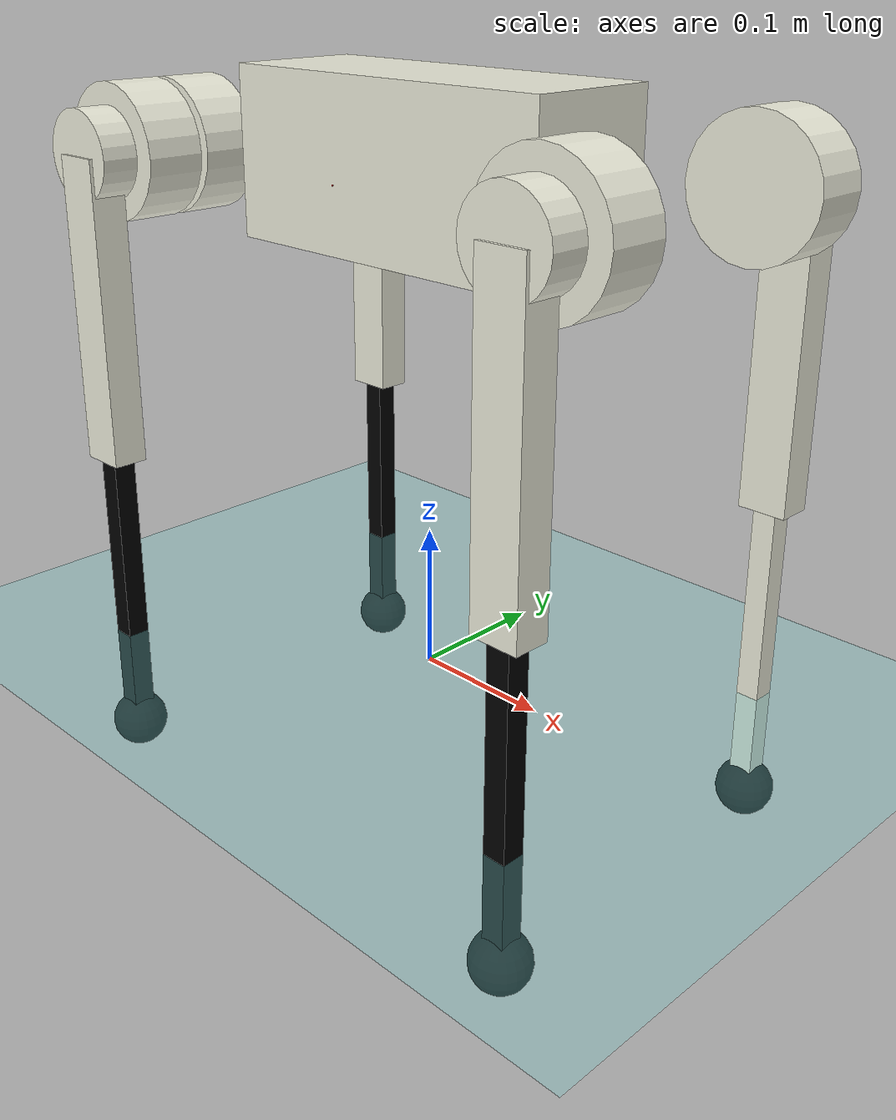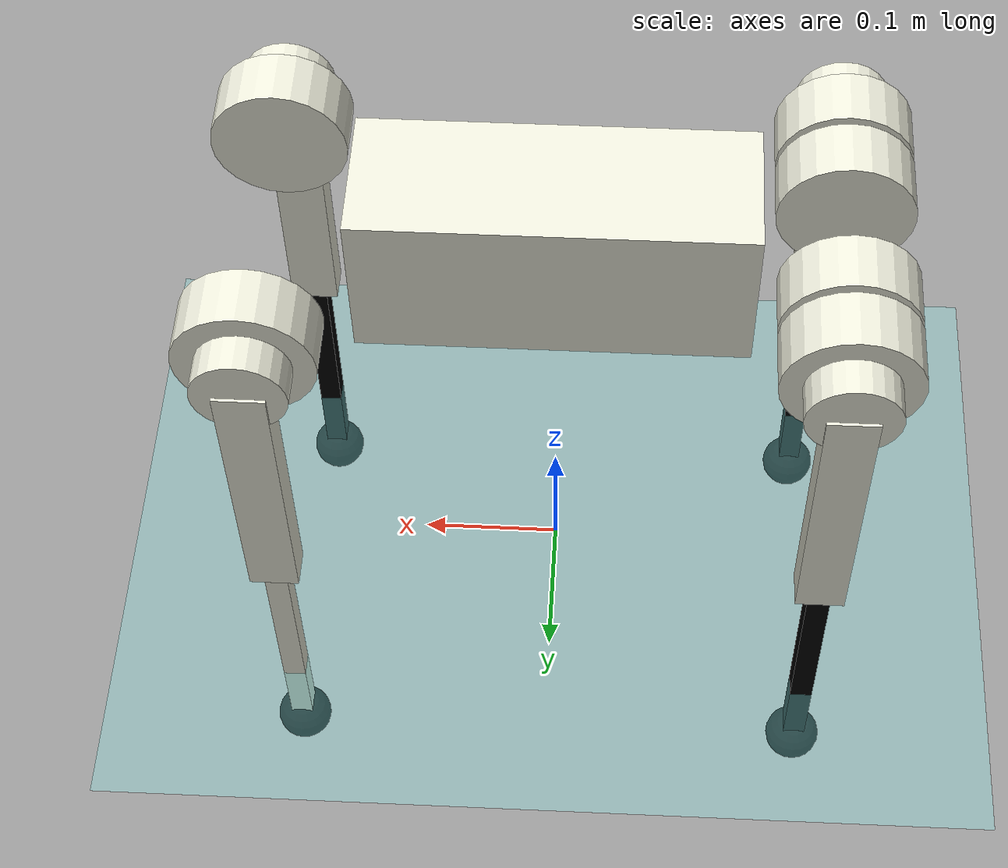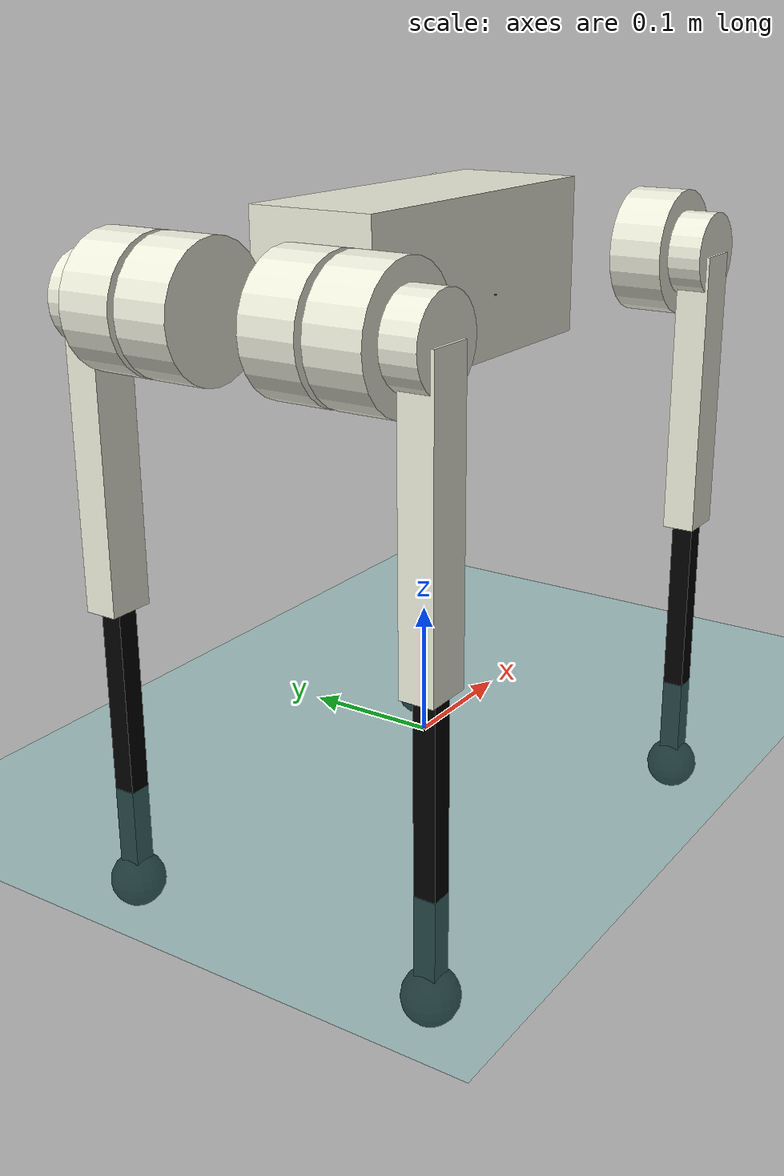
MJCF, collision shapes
<mujoco model="go1_description">
    <compiler angle="radian" meshdir="../meshes/" />
    <size njmax="500" nconmax="100" />
    <option gravity='0 0 -9.806' iterations='50' solver='Newton' timestep='0.002'/>

    <default>
        <geom contype="1" conaffinity="1" friction="0.6 0.3 0.3" rgba="0.5 0.6 0.7 1" margin="0.001" group="0"/>

        <light castshadow="false" diffuse="1 1 1"/>
        <motor ctrlrange="-33.5 33.5" ctrllimited="true"/>
        <camera fovy="60"/>
        <joint damping="0.01" armature="0.01" frictionloss="0.2" />

    </default>

    <custom>
        <numeric name="sensor_size" data="0.05" />
    </custom>

    <asset>
        <mesh name="trunk" file="trunk.stl" />
        <mesh name="hip" file="hip.stl" />
        <mesh name="thigh_mirror" file="thigh_mirror.stl" />
        <mesh name="calf" file="calf.stl" />
        <mesh name="thigh" file="thigh.stl" />
        <mesh name="sensor_body" file="sensor_body.stl" />
    </asset>

    <asset>
        <texture type="skybox" builtin="gradient" rgb1="1.0 1.0 1.0" rgb2="1.0 1.0 1.0" width="512" height="512"/>
        <texture name="plane" type="2d" builtin="flat" rgb1="1 1 1" rgb2="1 1 1" width="512" height="512" mark="cross" markrgb="0 0 0"/>
        <material name="plane" reflectance="0.0" texture="plane" texrepeat="3 3" texuniform="true"/>
    </asset>

    <asset>
        <hfield name="hf1" size="10 10 0.3 0.1" file="C:\\Users\\Omri\\Desktop\\MSc\\Thesis\\Code\\Height_Maps\\heightmap1682612500.9804645.png"/>
        <texture name="height_map_texture" type="2d" file="C:\\Users\\Omri\\Desktop\\MSc\\Thesis\\Code\\Height_Maps\\heightmap1682612500.9804645.png" />
    </asset>

    <visual>
        <rgba com="0.502 1.0 0 0.5" contactforce="0.98 0.4 0.4 0.7" contactpoint="1.0 1.0 0.6 0.4"/>
        <scale com="0.2" forcewidth="0.035" contactwidth="0.10" contactheight="0.04"/>
    </visual>

    <worldbody>
        <light directional="true" diffuse=".8 .8 .8" pos="0 0 10" dir="0 0 -10"/>
        <camera name="track" mode="trackcom" pos="0 -1.3 1.6" xyaxes="1 0 0 0 0.707 0.707"/>
        <geom name='floor' type='plane' conaffinity='1' condim='3' contype='1' rgba="0.5 0.9 0.9 0.1" material='plane' pos='0 0 0' size='0 0 1'/>

        <body name="trunk" pos="0 0 0.35">
            <inertial pos="0.0116053 0.00442221 0.000106692" quat="0.0111438 0.707126 -0.00935374 0.706938" mass="4.801" diaginertia="0.0447997 0.0366257 0.0162187" />
            <joint type="free" />
            <geom type="mesh" contype="0" conaffinity="0" group="1" rgba="0.913725 0.913725 0.847059 1" mesh="trunk" />
            <geom size="0.13 0.04675 0.057" type="box" rgba="0.913725 0.913725 0.847059 1" />
            <geom size="0.0005 0.0005 0.0005" pos="-0.01592 -0.06659 -0.00617" type="box" contype="0" conaffinity="0" group="1" rgba="0.8 0 0 0" />
            <geom size="0.0005 0.0005 0.0005" pos="-0.01592 -0.06659 -0.00617" type="box" rgba="0.8 0 0 0" />
            <site name="imu" pos="0 0 0"/>

            <body name="FR_hip" pos="0.1881 -0.04675 0">
                <inertial pos="-0.00406411 -0.0193463 4.50733e-06" quat="0.467526 0.531662 -0.466259 0.530431" mass="0.679292" diaginertia="0.00131334 0.00122648 0.000728484" />
                <joint name="FR_hip_joint" pos="0 0 0" axis="1 0 0" limited="true" range="-0.802851 0.802851" />
                <geom quat="0 1 0 0" type="mesh" contype="0" conaffinity="0" group="1" rgba="0.913725 0.913725 0.847059 1" mesh="hip" />
                <geom size="0.046 0.02" pos="0 -0.045 0" quat="0.707107 0.707107 0 0" type="cylinder" rgba="0.913725 0.913725 0.847059 0" />
                <geom size="0.031 0.02" pos="0 -0.07 0" quat="0.707107 0.707107 0 0" type="cylinder" rgba="0.913725 0.913725 0.847059 0" />

                <body name="FR_thigh" pos="0 -0.08 0">
                    <inertial pos="-0.003468 0.018947 -0.032736" quat="0.999266 0.00067676 -0.0382978 0.000639813" mass="0.898919" diaginertia="0.00542178 0.00514246 0.000998869" />
                    <joint name="FR_thigh_joint" pos="0 0 0" axis="0 1 0" limited="true" range="-1.0472 4.18879" />
                    <geom type="mesh" contype="0" conaffinity="0" group="1" rgba="0.913725 0.913725 0.847059 1" mesh="thigh_mirror" />
                    <geom size="0.1065 0.01225 0.017" pos="0 0 -0.1065" quat="0.707107 0 0.707107 0" type="box" rgba="0.913725 0.913725 0.847059 0" />

                    <body name="FR_calf" pos="0 0 -0.213">
                        <inertial pos="0.00455603 0.0009473 -0.147239" quat="0.762045 0.00970173 0.0180098 0.647201" mass="0.218015" diaginertia="0.00399678 0.00398122 3.99428e-05" />
                        <joint name="FR_calf_joint" pos="0 0 0" axis="0 1 0" limited="true" range="-2.69653 -0.916298" />
                        <geom type="mesh" contype="0" conaffinity="0" group="1" rgba="0 0 0 1" mesh="calf" />
                        <geom size="0.1065 0.008 0.008" pos="0 0 -0.1065" quat="0.707107 0 0.707107 0" type="box" rgba="0 0 0 0" />
                        <geom size="0.01" pos="0 0 -0.213" contype="0" conaffinity="0" group="1" rgba="0 0 0 1" />
                        <geom name= "FR_calf" size="0.02" pos="0 0 -0.213" rgba="0 0 0 1" />
                        <site name="foot1_force_sensor" pos="0 0 -0.215" size="0.0005" rgba="1 0 0 1" type="sphere" />
                        <site name="foot1_touch_sensor" pos="0 0 -0.215" size="0.0005" rgba="1 0 0 1" type="sphere" />
                    </body>
                </body>
            </body>

            <body name="FL_hip" pos="0.1881 0.04675 0">
                <inertial pos="-0.00406411 0.0193463 4.50733e-06" quat="0.531662 0.467526 -0.530431 0.466259" mass="0.679292" diaginertia="0.00131334 0.00122648 0.000728484" />
                <joint name="FL_hip_joint" pos="0 0 0" axis="1 0 0" limited="true" range="-0.802851 0.802851" />
                <geom type="mesh" contype="0" conaffinity="0" group="1" rgba="0.913725 0.913725 0.847059 1" mesh="hip" />
                <geom size="0.046 0.02" pos="0 0.045 0" quat="0.707107 0.707107 0 0" type="cylinder" rgba="0.913725 0.913725 0.847059 0" />
                <geom size="0.031 0.02" pos="0 0.07 0" quat="0.707107 0.707107 0 0" type="cylinder" rgba="0.913725 0.913725 0.847059 0" />

                <body name="FL_thigh" pos="0 0.08 0">
                    <inertial pos="-0.003468 -0.018947 -0.032736" quat="0.999266 -0.00067676 -0.0382978 -0.000639813" mass="0.898919" diaginertia="0.00542178 0.00514246 0.000998869" />
                    <joint name="FL_thigh_joint" pos="0 0 0" axis="0 1 0" limited="true" range="-1.0472 4.18879" />
                    <geom type="mesh" contype="0" conaffinity="0" group="1" rgba="0.913725 0.913725 0.847059 1" mesh="thigh" />
                    <geom size="0.1065 0.01225 0.017" pos="0 0 -0.1065" quat="0.707107 0 0.707107 0" type="box" rgba="0.913725 0.913725 0.847059 0" />

                    <body name="FL_calf" pos="0 0 -0.213">
                        <inertial pos="0.00455603 0.0009473 -0.147239" quat="0.762045 0.00970173 0.0180098 0.647201" mass="0.218015" diaginertia="0.00399678 0.00398122 3.99428e-05" />
                        <joint name="FL_calf_joint" pos="0 0 0" axis="0 1 0" limited="true" range="-2.69653 -0.916298" />
                        <geom type="mesh" contype="0" conaffinity="0" group="1" rgba="0 0 0 1" mesh="calf" />
                        <geom size="0.1065 0.008 0.008" pos="0 0 -0.1065" quat="0.707107 0 0.707107 0" type="box" rgba="0.913725 0.913725 0.847059 0" />
                        <geom size="0.01" pos="0 0 -0.213" contype="0" conaffinity="0" group="1" rgba="0 0 0 1" />
                        <geom name= "FL_calf" size="0.02" pos="0 0 -0.213" rgba="0 0 0 1" />
                        <site name="foot2_force_sensor" pos="0 0 -0.215" size="0.0005" rgba="1 0 0 1" type="sphere" />
                        <site name="foot2_touch_sensor" pos="0 0 -0.215" size="0.0005" rgba="1 0 0 1" type="sphere" />
                    </body>
                </body>
            </body>

            <body name="RR_hip" pos="-0.1881 -0.04675 0">
                <inertial pos="0.00406411 -0.0193463 4.50733e-06" quat="0.530431 0.466259 -0.531662 0.467526" mass="0.679292" diaginertia="0.00131334 0.00122648 0.000728484" />
                <joint name="RR_hip_joint" pos="0 0 0" axis="1 0 0" limited="true" range="-0.802851 0.802851" />
                <geom quat="0 0 0 -1" type="mesh" contype="0" conaffinity="0" group="1" rgba="0.913725 0.913725 0.847059 1" mesh="hip" />
                <geom size="0.046 0.02" quat="0.707107 0.707107 0 0" type="cylinder" rgba="0.913725 0.913725 0.847059 1" />
                <geom size="0.046 0.02" pos="0 -0.045 0" quat="0.707107 0.707107 0 0" type="cylinder" rgba="0.913725 0.913725 0.847059 0" />
                <geom size="0.031 0.02" pos="0 -0.07 0" quat="0.707107 0.707107 0 0" type="cylinder" rgba="0.913725 0.913725 0.847059 0" />

                <body name="RR_thigh" pos="0 -0.08 0">
                    <inertial pos="-0.003468 0.018947 -0.032736" quat="0.999266 0.00067676 -0.0382978 0.000639813" mass="0.898919" diaginertia="0.00542178 0.00514246 0.000998869" />
                    <joint name="RR_thigh_joint" pos="0 0 0" axis="0 1 0" limited="true" range="-1.0472 4.18879" />
                    <geom type="mesh" contype="0" conaffinity="0" group="1" rgba="0.913725 0.913725 0.847059 1" mesh="thigh_mirror" />
                    <geom size="0.1065 0.01225 0.017" pos="0 0 -0.1065" quat="0.707107 0 0.707107 0" type="box" rgba="0.913725 0.913725 0.847059 0" />

                    <body name="RR_calf" pos="0 0 -0.213">
                        <inertial pos="0.00455603 0.0009473 -0.147239" quat="0.762045 0.00970173 0.0180098 0.647201" mass="0.218015" diaginertia="0.00399678 0.00398122 3.99428e-05" />
                        <joint name="RR_calf_joint" pos="0 0 0" axis="0 1 0" limited="true" range="-2.69653 -0.916298" />
                        <geom type="mesh" contype="0" conaffinity="0" group="1" rgba="0 0 0 1" mesh="calf" />
                        <geom size="0.1065 0.008 0.008" pos="0 0 -0.1065" quat="0.707107 0 0.707107 0" type="box" rgba="0 0 0 0" />
                        <geom size="0.01" pos="0 0 -0.213" contype="0" conaffinity="0" group="1" rgba="0 0 0 1" />
                        <geom name= "RR_calf" size="0.02" pos="0 0 -0.213" rgba="0 0 0 1" />
                        <site name="foot3_force_sensor" pos="0 0 -0.215" size="0.0005" rgba="1 0 0 1" type="sphere" />
                        <site name="foot3_touch_sensor" pos="0 0 -0.215" size="0.0005" rgba="1 0 0 1" type="sphere" />
                    </body>
                </body>
            </body>
            <body name="RL_hip" pos="-0.1881 0.04675 0">
                <inertial pos="0.00406411 0.0193463 4.50733e-06" quat="0.466259 0.530431 -0.467526 0.531662" mass="0.679292" diaginertia="0.00131334 0.00122648 0.000728484" />
                <joint name="RL_hip_joint" pos="0 0 0" axis="1 0 0" limited="true" range="-0.802851 0.802851"  />
                <geom quat="0 0 1 0" type="mesh" contype="0" conaffinity="0" group="1" rgba="0.913725 0.913725 0.847059 1" mesh="hip" />
                <geom size="0.046 0.02" quat="0.707107 0.707107 0 0" type="cylinder" rgba="0.913725 0.913725 0.847059 1" />
                <geom size="0.046 0.02" pos="0 0.045 0" quat="0.707107 0.707107 0 0" type="cylinder" rgba="0.913725 0.913725 0.847059 0" />
                <geom size="0.031 0.02" pos="0 0.07 0" quat="0.707107 0.707107 0 0" type="cylinder" rgba="0.913725 0.913725 0.847059 0" />

                <body name="RL_thigh" pos="0 0.08 0">
                    <inertial pos="-0.003468 -0.018947 -0.032736" quat="0.999266 -0.00067676 -0.0382978 -0.000639813" mass="0.898919" diaginertia="0.00542178 0.00514246 0.000998869" />
                    <joint name="RL_thigh_joint" pos="0 0 0" axis="0 1 0" limited="true" range="-1.0472 4.18879" />
                    <geom type="mesh" contype="0" conaffinity="0" group="1" rgba="0.913725 0.913725 0.847059 1" mesh="thigh" />
                    <geom size="0.1065 0.01225 0.017" pos="0 0 -0.1065" quat="0.707107 0 0.707107 0" type="box" rgba="0.913725 0.913725 0.847059 0" />

                    <body name="RL_calf" pos="0 0 -0.213">
                        <inertial pos="0.00455603 0.0009473 -0.147239" quat="0.762045 0.00970173 0.0180098 0.647201" mass="0.218015" diaginertia="0.00399678 0.00398122 3.99428e-05" />
                        <joint name="RL_calf_joint" pos="0 0 0" axis="0 1 0" limited="true" range="-2.69653 -0.916298" />
                        <geom type="mesh" contype="0" conaffinity="0" group="1" rgba="0 0 0 1" mesh="calf" />
                        <geom size="0.1065 0.008 0.008" pos="0 0 -0.1065" quat="0.707107 0 0.707107 0" type="box" rgba="0 0 0 0" />
                        <geom size="0.01" pos="0 0 -0.213" contype="0" conaffinity="0" group="1" rgba="0 0 0 1" />
                        <geom name= "RL_calf" size="0.02" pos="0 0 -0.213" rgba="0 0 0 1" />
                        <site name="foot4_force_sensor" pos="0 0 -0.215" size="0.0005" rgba="1 0 0 1" type="sphere" />
                        <site name="foot4_touch_sensor" pos="0 0 -0.215" size="0.0005" rgba="1 0 0 1" type="sphere" />
                    </body>
                </body>
            </body>
        </body>
    </worldbody>
    <actuator>

        <motor name="FR_hip"       gear="1" joint="FR_hip_joint"/>
        <motor name="FR_thigh"     gear="1" joint="FR_thigh_joint"/>
        <motor name="FR_calf"      gear="1" joint="FR_calf_joint"/>
        <motor name="FL_hip"       gear="1" joint="FL_hip_joint"/>
        <motor name="FL_thigh"     gear="1" joint="FL_thigh_joint"/>
        <motor name="FL_calf"      gear="1" joint="FL_calf_joint"/>
        <motor name="RR_hip"       gear="1" joint="RR_hip_joint"/>
        <motor name="RR_thigh"     gear="1" joint="RR_thigh_joint"/>
        <motor name="RR_calf"      gear="1" joint="RR_calf_joint" />
        <motor name="RL_hip"       gear="1" joint="RL_hip_joint"/>
        <motor name="RL_thigh"     gear="1" joint="RL_thigh_joint"/>
        <motor name="RL_calf"      gear="1" joint="RL_calf_joint"/>
    </actuator>

    <sensor>

        <jointpos name="FR_hip_pos"     joint="FR_hip_joint"/>
        <jointpos name="FR_thigh_pos"   joint="FR_thigh_joint"/>
        <jointpos name="FR_calf_pos"    joint="FR_calf_joint"/>
        <jointpos name="FL_hip_pos"     joint="FL_hip_joint"/>
        <jointpos name="FL_thigh_pos"   joint="FL_thigh_joint"/>
        <jointpos name="FL_calf_pos"    joint="FL_calf_joint"/>
        <jointpos name="RR_hip_pos"     joint="RR_hip_joint"/>
        <jointpos name="RR_thigh_pos"   joint="RR_thigh_joint"/>
        <jointpos name="RR_calf_pos"    joint="RR_calf_joint" />
        <jointpos name="RL_hip_pos"     joint="RL_hip_joint"/>
        <jointpos name="RL_thigh_pos"   joint="RL_thigh_joint"/>
        <jointpos name="RL_calf_pos"    joint="RL_calf_joint"/>

        <jointvel name="FR_hip_vel"     joint="FR_hip_joint"/>
        <jointvel name="FR_thigh_vel"   joint="FR_thigh_joint"/>
        <jointvel name="FR_calf_vel"    joint="FR_calf_joint"/>
        <jointvel name="FL_hip_vel"     joint="FL_hip_joint"/>
        <jointvel name="FL_thigh_vel"   joint="FL_thigh_joint"/>
        <jointvel name="FL_calf_vel"    joint="FL_calf_joint"/>
        <jointvel name="RR_hip_vel"     joint="RR_hip_joint"/>
        <jointvel name="RR_thigh_vel"   joint="RR_thigh_joint"/>
        <jointvel name="RR_calf_vel"    joint="RR_calf_joint" />
        <jointvel name="RL_hip_vel"     joint="RL_hip_joint"/>
        <jointvel name="RL_thigh_vel"   joint="RL_thigh_joint"/>
        <jointvel name="RL_calf_vel"    joint="RL_calf_joint"/>

        <accelerometer name="Body_Acc" site="imu"/>

        <gyro name="Body_Gyro" site="imu"/>

        <framepos name="Body_Pos" objtype="site" objname="imu"/>

        <framequat name="Body_Quat" objtype="site" objname="imu"/>

        <touch name="foot1_touch" site="foot1_touch_sensor" />
        <touch name="foot2_touch" site="foot2_touch_sensor" />
        <touch name="foot3_touch" site="foot3_touch_sensor" />
        <touch name="foot4_touch" site="foot4_touch_sensor" />
        <force name="foot1_force" site="foot1_force_sensor" />
        <force name="foot2_force" site="foot2_force_sensor" />
        <force name="foot3_force" site="foot3_force_sensor" />
        <force name="foot4_force" site="foot4_force_sensor" />

    </sensor>
</mujoco>
